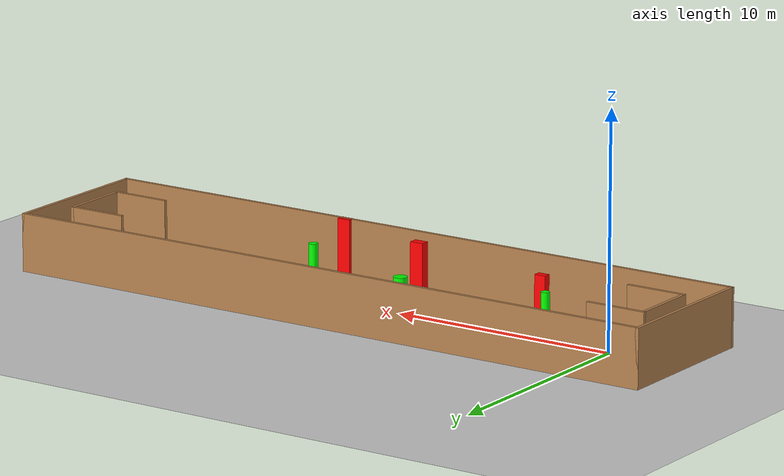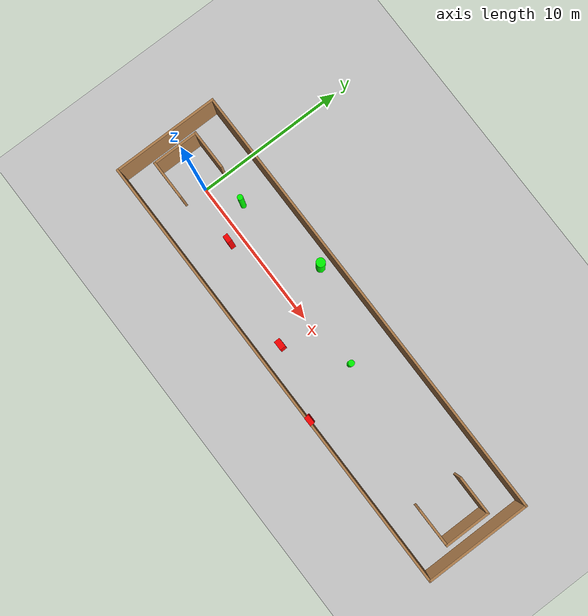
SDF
<sdf version="1.7">
 <world name="default">
  <light name="sun" type="directional">
   <pose>0 0 10 0 -0 0</pose>
   <diffuse>0.8 0.8 0.8 1</diffuse>
   <specular>0.2 0.2 0.2 1</specular>
   <attenuation>
    <range>1000</range>
    <constant>0.9</constant>
    <linear>0.01</linear>
    <quadratic>0.001</quadratic>
   </attenuation>
   <direction>-0.5 0.1 -0.9</direction>
   <spot><inner_angle>0</inner_angle><outer_angle>0</outer_angle><falloff>0</falloff></spot>
  </light>
  <model name="ground_plane">
   <static>1</static>
   <link name="link">
    <collision name="collision">
     <geometry><plane><normal>0 0 1</normal><size>100 100</size></plane></geometry>
     <surface>
      <contact><collide_bitmask>65535</collide_bitmask></contact>
      <friction><ode><mu>100</mu><mu2>50</mu2></ode></friction>
     </surface>
    </collision>
    <visual name="visual">
     <cast_shadows>0</cast_shadows>
     <geometry><plane><normal>0 0 1</normal><size>100 100</size></plane></geometry>
     <material>
      <script><uri>file://media/materials/scripts/gazebo.material</uri><name>Gazebo/Grey</name></script>
     </material>
    </visual>
   </link>
  </model>
  <gravity>0 0 -9.8</gravity>
  <magnetic_field>6e-06 2.3e-05 -4.2e-05</magnetic_field>
  <atmosphere type="adiabatic"/>
  <physics type="ode">
   <max_step_size>0.001</max_step_size>
   <real_time_factor>1</real_time_factor>
   <real_time_update_rate>1000</real_time_update_rate>
  </physics>
  <scene><ambient>0.4 0.4 0.4 1</ambient><background>0.7 0.7 0.7 1</background><shadows>1</shadows></scene>
  <spherical_coordinates>
   <surface_model>EARTH_WGS84</surface_model>
   <latitude_deg>0</latitude_deg>
   <longitude_deg>0</longitude_deg>
   <elevation>0</elevation>
   <heading_deg>0</heading_deg>
  </spherical_coordinates>
  <model name="my_base_walls">
   <link name="Wall_0">
    <collision name="Wall_0_Collision">
     <geometry><box><size>7.15 0.15 2.5</size></box></geometry>
     <pose>0 0 1.25 0 -0 0</pose>
    </collision>
    <visual name="Wall_0_Visual">
     <pose>0 0 1.25 0 -0 0</pose>
     <geometry><box><size>7.15 0.15 2.5</size></box></geometry>
     <material>
      <script><uri>file://media/materials/scripts/gazebo.material</uri><name>Gazebo/Wood</name></script>
      <ambient>1 1 1 1</ambient>
     </material>
     <meta><layer>0</layer></meta>
    </visual>
    <pose>-15 0 0 0 -0 1.5708</pose>
   </link>
   <link name="Wall_10">
    <collision name="Wall_10_Collision">
     <geometry><box><size>2.65 0.15 2.5</size></box></geometry>
     <pose>0 0 1.25 0 -0 0</pose>
    </collision>
    <visual name="Wall_10_Visual">
     <pose>0 0 1.25 0 -0 0</pose>
     <geometry><box><size>2.65 0.15 2.5</size></box></geometry>
     <material>
      <script><uri>file://media/materials/scripts/gazebo.material</uri><name>Gazebo/Wood</name></script>
      <ambient>1 1 1 1</ambient>
     </material>
     <meta><layer>0</layer></meta>
    </visual>
    <pose>-12.75 -1.5 0 0 -0 0</pose>
   </link>
   <link name="Wall_12">
    <collision name="Wall_12_Collision">
     <geometry><box><size>2.65 0.15 2.5</size></box></geometry>
     <pose>0 0 1.25 0 -0 0</pose>
    </collision>
    <visual name="Wall_12_Visual">
     <pose>0 0 1.25 0 -0 0</pose>
     <geometry><box><size>2.65 0.15 2.5</size></box></geometry>
     <material>
      <script><uri>file://media/materials/scripts/gazebo.material</uri><name>Gazebo/Wood</name></script>
      <ambient>1 1 1 1</ambient>
     </material>
     <meta><layer>0</layer></meta>
    </visual>
    <pose>-12.75 1.5 0 0 -0 0</pose>
   </link>
   <link name="Wall_14">
    <collision name="Wall_14_Collision">
     <geometry><box><size>3.15 0.15 2.5</size></box></geometry>
     <pose>0 0 1.25 0 -0 0</pose>
    </collision>
    <visual name="Wall_14_Visual">
     <pose>0 0 1.25 0 -0 0</pose>
     <geometry><box><size>3.15 0.15 2.5</size></box></geometry>
     <material>
      <script><uri>file://media/materials/scripts/gazebo.material</uri><name>Gazebo/Wood</name></script>
      <ambient>1 1 1 1</ambient>
     </material>
     <meta><layer>0</layer></meta>
    </visual>
    <pose>14 0 0 0 -0 -1.5708</pose>
   </link>
   <link name="Wall_15">
    <collision name="Wall_15_Collision">
     <geometry><box><size>2.65 0.15 2.5</size></box></geometry>
     <pose>0 0 1.25 0 -0 0</pose>
    </collision>
    <visual name="Wall_15_Visual">
     <pose>0 0 1.25 0 -0 0</pose>
     <geometry><box><size>2.65 0.15 2.5</size></box></geometry>
     <material>
      <script><uri>file://media/materials/scripts/gazebo.material</uri><name>Gazebo/Wood</name></script>
      <ambient>1 1 1 1</ambient>
     </material>
     <meta><layer>0</layer></meta>
    </visual>
    <pose>12.75 -1.5 0 0 -0 3.14159</pose>
   </link>
   <link name="Wall_17">
    <collision name="Wall_17_Collision">
     <geometry><box><size>2.65 0.15 2.5</size></box></geometry>
     <pose>0 0 1.25 0 -0 0</pose>
    </collision>
    <visual name="Wall_17_Visual">
     <pose>0 0 1.25 0 -0 0</pose>
     <geometry><box><size>2.65 0.15 2.5</size></box></geometry>
     <material>
      <script><uri>file://media/materials/scripts/gazebo.material</uri><name>Gazebo/Wood</name></script>
      <ambient>1 1 1 1</ambient>
     </material>
     <meta><layer>0</layer></meta>
    </visual>
    <pose>12.75 1.5 0 0 -0 3.14159</pose>
   </link>
   <link name="Wall_2">
    <collision name="Wall_2_Collision">
     <geometry><box><size>30.15 0.15 2.5</size></box></geometry>
     <pose>0 0 1.25 0 -0 0</pose>
    </collision>
    <visual name="Wall_2_Visual">
     <pose>0 0 1.25 0 -0 0</pose>
     <geometry><box><size>30.15 0.15 2.5</size></box></geometry>
     <material>
      <script><uri>file://media/materials/scripts/gazebo.material</uri><name>Gazebo/Wood</name></script>
      <ambient>1 1 1 1</ambient>
     </material>
     <meta><layer>0</layer></meta>
    </visual>
    <pose>-0 -3.5 0 0 -0 0</pose>
   </link>
   <link name="Wall_4">
    <collision name="Wall_4_Collision">
     <geometry><box><size>30.15 0.15 2.5</size></box></geometry>
     <pose>0 0 1.25 0 -0 0</pose>
    </collision>
    <visual name="Wall_4_Visual">
     <pose>0 0 1.25 0 -0 0</pose>
     <geometry><box><size>30.15 0.15 2.5</size></box></geometry>
     <material>
      <script><uri>file://media/materials/scripts/gazebo.material</uri><name>Gazebo/Wood</name></script>
      <ambient>1 1 1 1</ambient>
     </material>
     <meta><layer>0</layer></meta>
    </visual>
    <pose>-0 3.5 0 0 -0 0</pose>
   </link>
   <link name="Wall_6">
    <collision name="Wall_6_Collision">
     <geometry><box><size>7.15 0.15 2.5</size></box></geometry>
     <pose>0 0 1.25 0 -0 0</pose>
    </collision>
    <visual name="Wall_6_Visual">
     <pose>0 0 1.25 0 -0 0</pose>
     <geometry><box><size>7.15 0.15 2.5</size></box></geometry>
     <material>
      <script><uri>file://media/materials/scripts/gazebo.material</uri><name>Gazebo/Wood</name></script>
      <ambient>1 1 1 1</ambient>
     </material>
     <meta><layer>0</layer></meta>
    </visual>
    <pose>15 0 0 0 -0 -1.5708</pose>
   </link>
   <link name="Wall_9">
    <collision name="Wall_9_Collision">
     <geometry><box><size>3.15 0.15 2.5</size></box></geometry>
     <pose>0 0 1.25 0 -0 0</pose>
    </collision>
    <visual name="Wall_9_Visual">
     <pose>0 0 1.25 0 -0 0</pose>
     <geometry><box><size>3.15 0.15 2.5</size></box></geometry>
     <material>
      <script><uri>file://media/materials/scripts/gazebo.material</uri><name>Gazebo/Wood</name></script>
      <ambient>1 1 1 1</ambient>
     </material>
     <meta><layer>0</layer></meta>
    </visual>
    <pose>-14 0 0 0 -0 -1.5708</pose>
   </link>
   <static>1</static>
   <pose>11.5 0 0 0 -0 0</pose>
  </model>
  <model name="cylinder1">
   <static>1</static>
   <link name="link">
    <inertial>
     <mass>1</mass>
     <inertia><ixx>0.5</ixx><ixy>0</ixy><ixz>0</ixz><iyy>0.5</iyy><iyz>0</iyz><izz>1</izz></inertia>
    </inertial>
    <collision name="collision">
     <geometry><cylinder><radius>0.1973829801138935</radius><length>2.5</length></cylinder></geometry>
    </collision>
    <visual name="visual">
     <geometry><cylinder><radius>0.1973829801138935</radius><length>2.5</length></cylinder></geometry>
     <material>
      <ambient>0 1 0 1</ambient>
      <diffuse>0 1 0 1</diffuse>
      <specular>0.1 0.1 0.1 1</specular>
      <emissive>0 0 0 0</emissive>
     </material>
    </visual>
   </link>
   <pose>13.90248341466825 0.5225837698164719 1.25 0 0 0</pose>
  </model>
  <model name="cylinder2">
   <static>1</static>
   <link name="link">
    <inertial>
     <mass>1</mass>
     <inertia><ixx>0.5</ixx><ixy>0</ixy><ixz>0</ixz><iyy>0.5</iyy><iyz>0</iyz><izz>1</izz></inertia>
    </inertial>
    <collision name="collision">
     <geometry><cylinder><radius>0.17905141285012888</radius><length>2.5</length></cylinder></geometry>
    </collision>
    <visual name="visual">
     <geometry><cylinder><radius>0.17905141285012888</radius><length>2.5</length></cylinder></geometry>
     <material>
      <ambient>0 1 0 1</ambient>
      <diffuse>0 1 0 1</diffuse>
      <specular>0.1 0.1 0.1 1</specular>
      <emissive>0 0 0 0</emissive>
     </material>
    </visual>
   </link>
   <pose>2.177441703320019 1.2719017131183268 1.25 0 0 0</pose>
  </model>
  <model name="cylinder3">
   <static>1</static>
   <link name="link">
    <inertial>
     <mass>1</mass>
     <inertia><ixx>0.5</ixx><ixy>0</ixy><ixz>0</ixz><iyy>0.5</iyy><iyz>0</iyz><izz>1</izz></inertia>
    </inertial>
    <collision name="collision">
     <geometry><cylinder><radius>0.2913282719884607</radius><length>2.5</length></cylinder></geometry>
    </collision>
    <visual name="visual">
     <geometry><cylinder><radius>0.2913282719884607</radius><length>2.5</length></cylinder></geometry>
     <material>
      <ambient>0 1 0 1</ambient>
      <diffuse>0 1 0 1</diffuse>
      <specular>0.1 0.1 0.1 1</specular>
      <emissive>0 0 0 0</emissive>
     </material>
    </visual>
   </link>
   <pose>8.134152602324642 2.6915021134863677 1.25 0 0 0</pose>
  </model>
  <model name="box1">
   <static>1</static>
   <link name="link">
    <inertial>
     <mass>1</mass>
     <inertia><ixx>0.083</ixx><ixy>0</ixy><ixz>0</ixz><iyy>0.083</iyy><iyz>0</iyz><izz>0.083</izz></inertia>
    </inertial>
    <collision name="collision">
     <geometry><box><size>0.48861654018876055 0.3300236716412448 2.5</size></box></geometry>
    </collision>
    <visual name="visual">
     <geometry><box><size>0.48861654018876055 0.3300236716412448 2.5</size></box></geometry>
     <material>
      <ambient>1 0 0 1</ambient>
      <diffuse>1 0 0 1</diffuse>
      <specular>0.1 0.1 0.1 1</specular>
      <emissive>0 0 0 0</emissive>
     </material>
    </visual>
    <sensor name="my_contact" type="contact">
     <contact><collision>box_collision</collision><topic>__default_topic__</topic></contact>
    </sensor>
   </link>
   <pose>3.6731583072157363 -0.7919860379743486 1.25 0 0 0</pose>
  </model>
  <model name="box2">
   <static>1</static>
   <link name="link">
    <inertial>
     <mass>1</mass>
     <inertia><ixx>0.083</ixx><ixy>0</ixy><ixz>0</ixz><iyy>0.083</iyy><iyz>0</iyz><izz>0.083</izz></inertia>
    </inertial>
    <collision name="collision">
     <geometry><box><size>0.5973728643663289 0.389259385056076 2.5</size></box></geometry>
    </collision>
    <visual name="visual">
     <geometry><box><size>0.5973728643663289 0.389259385056076 2.5</size></box></geometry>
     <material>
      <ambient>1 0 0 1</ambient>
      <diffuse>1 0 0 1</diffuse>
      <specular>0.1 0.1 0.1 1</specular>
      <emissive>0 0 0 0</emissive>
     </material>
    </visual>
    <sensor name="my_contact" type="contact">
     <contact><collision>box_collision</collision><topic>__default_topic__</topic></contact>
    </sensor>
   </link>
   <pose>10.491225094919386 -2.1102547636727973 1.25 0 0 0</pose>
  </model>
  <model name="box3">
   <static>1</static>
   <link name="link">
    <inertial>
     <mass>1</mass>
     <inertia><ixx>0.083</ixx><ixy>0</ixy><ixz>0</ixz><iyy>0.083</iyy><iyz>0</iyz><izz>0.083</izz></inertia>
    </inertial>
    <collision name="collision">
     <geometry><box><size>0.5906811173001524 0.3235813205548329 2.5</size></box></geometry>
    </collision>
    <visual name="visual">
     <geometry><box><size>0.5906811173001524 0.3235813205548329 2.5</size></box></geometry>
     <material>
      <ambient>1 0 0 1</ambient>
      <diffuse>1 0 0 1</diffuse>
      <specular>0.1 0.1 0.1 1</specular>
      <emissive>0 0 0 0</emissive>
     </material>
    </visual>
    <sensor name="my_contact" type="contact">
     <contact><collision>box_collision</collision><topic>__default_topic__</topic></contact>
    </sensor>
   </link>
   <pose>15.052426071169416 -3.4254279933366485 1.25 0 0 0</pose>
  </model>
 </world>
</sdf>
